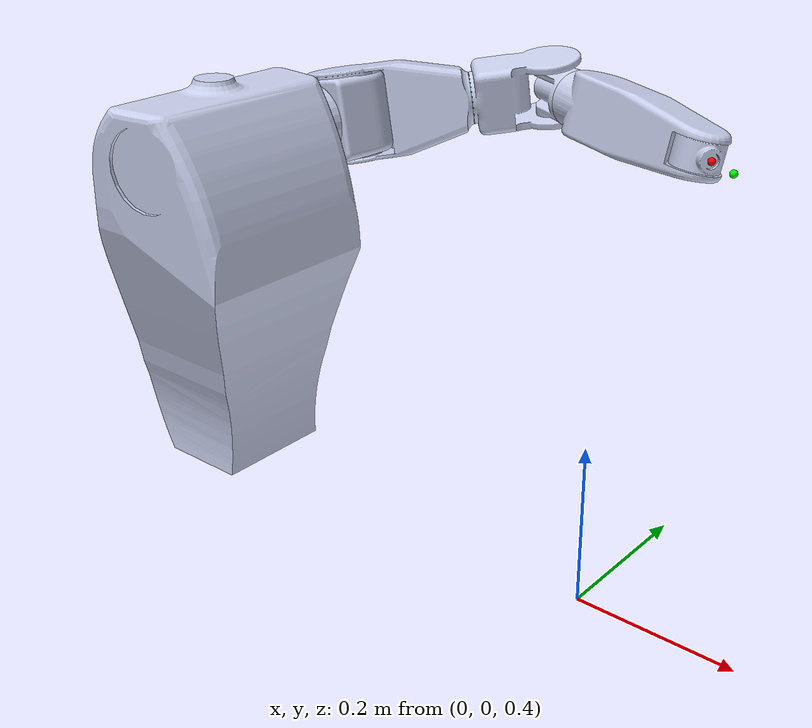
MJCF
<mujoco model="body_sim">
    <compiler angle="radian"
              inertiafromgeom="true"
              texturedir="textures/"
              meshdir=""/>

    <option impratio="20" cone="elliptic" density="1.2" viscosity="0.00002" timestep="0.002"/>

    <default>
        <geom density="5.0"/>
        <default class="arm_joint">
            <joint axis="1 0 0" range="-3.14 3.14" damping="2" limited="true" armature="0.0002" frictionloss="0.01"/>
            <position kp="3" ctrlrange="-1 1"/>
        </default>
        <default class="joint">
            <joint axis="1 0 0" range="-3.14 3.14" damping="1" limited="true" armature="0.0002" frictionloss="0.01"/>
            <position kp="3" ctrlrange="-2 2"/>
        </default>
    </default>

    <size njmax="500" nconmax="100"/>
    <asset>
        <texture builtin="gradient" height="100" rgb1=".4 .5 .6" rgb2="0 0 0" type="skybox" width="100"/>
        <texture name="texplane" type="2d" builtin="checker" rgb1=".2 .3 .4" rgb2=".1 0.15 0.2" width="100" height="100"/>
        <material name="MatPlane" reflectance="0.5" texture="texplane" texrepeat="1 1" texuniform="true"/>

        <texture file="/home/kavin/anaconda3/envs/PythonEnv/lib/python3.8/site-packages/robosuite/models/assets/arenas/../textures/ceramic.png" type="cube" name="tex-ceramic"/>
        <material name="table_ceramic" reflectance="0.0" shininess="0.0" specular="0.2" texrepeat="1 1" texture="tex-ceramic"/>

        <texture file="/home/kavin/anaconda3/envs/PythonEnv/lib/python3.8/site-packages/robosuite/models/assets/arenas/../textures/steel-brushed.png" type="cube" name="tex-steel-brushed"/>
        <material name="table_legs_metal" reflectance="0.8" shininess="0.8" texrepeat="1 1" texture="tex-steel-brushed"/>

        <texture name="textable" builtin="flat" height="512" width="512" rgb1="0.5 0.5 0.5" rgb2="0.5 0.5 0.5"/>
        <material name="table_mat" texture="textable"/>
        <mesh name="mount0_pedestal" file="/home/kavin/anaconda3/envs/PythonEnv/lib/python3.8/site-packages/robosuite/models/assets/mounts/meshes/rethink_mount/pedestal.stl"/>

        <mesh file="/home/kavin/Documents/PycharmProjects/Mujoco/hand_imitation/utils/../models/assets/ycb/collision/011_banana/011_banana_1.stl" name="banana_collision_mesh_1" scale="0.8 0.8 0.8"/>
        <mesh file="/home/kavin/Documents/PycharmProjects/Mujoco/hand_imitation/utils/../models/assets/ycb/collision/011_banana/011_banana_2.stl" name="banana_collision_mesh_2" scale="0.8 0.8 0.8"/>
        <mesh file="/home/kavin/Documents/PycharmProjects/Mujoco/hand_imitation/utils/../models/assets/ycb/visual/011_banana/textured_simple_blender.msh" name="banana_visual_mesh"
              scale="0.8 0.8 0.8"/>
        <texture file="/home/kavin/Documents/PycharmProjects/Mujoco/hand_imitation/utils/../models/assets/ycb/visual/011_banana/texture_map.png" name="banana_texture" type="2d"/>
        <material name="banana_material" texture="banana_texture"/>

        <mesh file="/home/kavin/Documents/GitProjects/RL/robosuite/robosuite/models/assets/objects/meshes/can.msh" name="can_mesh"/>
        <texture file="/home/kavin/Documents/GitProjects/RL/robosuite/robosuite/models/assets/textures/soda.png" name="tex-can" type="2d"/>
        <material name="coke" reflectance="0.7" texrepeat="5 5" texture="tex-can" texuniform="true"/>

        <texture type="cube" name="cube_redwood" file="/home/kavin/Documents/PycharmProjects/Robosuite/robosuite/models/assets/textures/red-wood.png" />
        <material texrepeat="1 1" specular="0.4" shininess="0.1" name="cube_redwood_mat" texture="cube_redwood" />

        <mesh name="body" file="meshes/robot/body.STL"/>
        <mesh name="neck" file="meshes/robot/neck.STL"/>
        <mesh name="head" file="meshes/robot/head.STL"/>
        <mesh name="left_1" file="meshes/robot/left_1.STL"/>
        <mesh name="left_2" file="meshes/robot/left_2.STL"/>
        <mesh name="left_3" file="meshes/robot/left_3.STL"/>
        <mesh name="left_4" file="meshes/robot/left_4.STL"/>
        <mesh name="left_5" file="meshes/robot/left_5.STL"/>
        <mesh name="left_6" file="meshes/robot/left_6.STL"/>

        <mesh name="right_1" file="meshes/robot/right_1.STL"/>
        <mesh name="right_2" file="meshes/robot/right_2.STL"/>
        <mesh name="right_3" file="meshes/robot/right_3.STL"/>
        <mesh name="right_4" file="meshes/robot/right_4.STL"/>
        <mesh name="right_5" file="meshes/robot/right_5.STL"/>
        <mesh name="right_6" file="meshes/robot/right_6.STL"/>

        <mesh name="palm_left" file="meshes/robot/palm_left.STL" />
        <mesh name="finger_11_left" file="meshes/robot/finger_11_left.STL" />
        <mesh name="finger_12_left" file="meshes/robot/finger_12_left.STL" />
        <mesh name="finger_13_left" file="meshes/robot/finger_13_left.STL" />
        <mesh name="finger_14_left" file="meshes/robot/finger_14_left.STL" />
        <mesh name="finger_21_left" file="meshes/robot/finger_21_left.STL" />
        <mesh name="finger_22_left" file="meshes/robot/finger_22_left.STL" />
        <mesh name="finger_23_left" file="meshes/robot/finger_23_left.STL" />
        <mesh name="finger_31_left" file="meshes/robot/finger_31_left.STL" />
        <mesh name="finger_32_left" file="meshes/robot/finger_32_left.STL" />
        <mesh name="finger_33_left" file="meshes/robot/finger_33_left.STL" />
        <mesh name="finger_41_left" file="meshes/robot/finger_41_left.STL" />
        <mesh name="finger_42_left" file="meshes/robot/finger_42_left.STL" />
        <mesh name="finger_43_left" file="meshes/robot/finger_43_left.STL" />
        <mesh name="finger_51_left" file="meshes/robot/finger_51_left.STL" />
        <mesh name="finger_52_left" file="meshes/robot/finger_52_left.STL" />
        <mesh name="finger_53_left" file="meshes/robot/finger_53_left.STL" />

        <mesh name="palm_right" file="meshes/robot/palm_right.STL" />
        <mesh name="finger_11_right" file="meshes/robot/finger_11_right.STL" />
        <mesh name="finger_12_right" file="meshes/robot/finger_12_right.STL" />
        <mesh name="finger_13_right" file="meshes/robot/finger_13_right.STL" />
        <mesh name="finger_14_right" file="meshes/robot/finger_14_right.STL" />
        <mesh name="finger_21_right" file="meshes/robot/finger_21_right.STL" />
        <mesh name="finger_22_right" file="meshes/robot/finger_22_right.STL" />
        <mesh name="finger_23_right" file="meshes/robot/finger_23_right.STL" />
        <mesh name="finger_31_right" file="meshes/robot/finger_31_right.STL" />
        <mesh name="finger_32_right" file="meshes/robot/finger_32_right.STL" />
        <mesh name="finger_33_right" file="meshes/robot/finger_33_right.STL" />
        <mesh name="finger_41_right" file="meshes/robot/finger_41_right.STL" />
        <mesh name="finger_42_right" file="meshes/robot/finger_42_right.STL" />
        <mesh name="finger_43_right" file="meshes/robot/finger_43_right.STL" />
        <mesh name="finger_51_right" file="meshes/robot/finger_51_right.STL" />
        <mesh name="finger_52_right" file="meshes/robot/finger_52_right.STL" />
        <mesh name="finger_53_right" file="meshes/robot/finger_53_right.STL" />
    </asset>

    <worldbody>

        <body name="body" pos="-0.56 0 0.412">
            <inertial pos="0 0 0" quat="0.5 0.5 -0.5 0.5" mass="4" diaginertia="0.0072 0.00443333 0.00443333"/>
            <geom type="mesh" contype="0" conaffinity="0" group="1" rgba="0.792157 0.819608 0.933333 1" mesh="body" name="body_visual"/>
            <geom type="mesh" rgba="0.792157 0.819608 0.933333 1" mesh="body" name="body_collision"/>
            <body name="left_1" pos="0.0084368 0.13751 0.43" quat="0.422014 0.509768 -0.577484 -0.478073">
                <inertial pos="-0.0389123 -8.15098e-11 4.37584e-11" quat="0.707107 0 0 0.707107" mass="0.450915" diaginertia="0.00114268 0.000950117 0.000939472"/>
                <joint class="arm_joint" name="left_j1" axis="1 0 0"/>
                <geom type="mesh" contype="0" conaffinity="0" group="1" rgba="0.792157 0.819608 0.933333 1" mesh="left_1" name="left_1_visual"/>
                <geom type="mesh" rgba="0.792157 0.819608 0.933333 1" mesh="left_1" />
                <body name="left_2" pos="-0.075 0 0" quat="0.934134 0 -0.356921 0">
                    <inertial pos="-0.0621308 1.25597e-07 0.00042437" quat="3.21075e-06 0.706526 3.20548e-06 0.707688" mass="1.56019" diaginertia="0.00710312 0.00597558 0.00259922"/>
                    <joint class="arm_joint" name="left_j2" axis="0 1 0"/>
                    <geom type="mesh" contype="0" conaffinity="0" group="1" rgba="0.792157 0.819608 0.933333 1" mesh="left_2" name="left_2_visual"/>
                    <geom type="mesh" rgba="0.792157 0.819608 0.933333 1" mesh="left_2" name="left_2_collision"/>
                    <body name="left_3" pos="-0.16 0 0" quat="0.792164 0.610309 0 0">
                        <inertial pos="-0.059665 2.14069e-07 -0.000729859" quat="0.502955 0.497027 0.497027 0.502955" mass="0.52034" diaginertia="0.00128574 0.00107323 0.000678269"/>
                        <joint class="arm_joint" name="left_j3" axis="1 0 0"/>
                        <geom type="mesh" contype="0" conaffinity="0" group="1" rgba="0.792157 0.819608 0.933333 1" mesh="left_3" name="left_3_visual"/>
                        <geom type="mesh" rgba="0.792157 0.819608 0.933333 1" mesh="left_3" name="left_3_collision"/>
                        <body name="left_4" pos="-0.121 0 0.037" quat="0.854816 0 0 0.518931">
                            <inertial pos="-0.0236502 -1.38379e-09 -0.037" quat="0.5 0.5 0.5 0.5" mass="0.187003" diaginertia="0.000176801 0.00013087 0.000111406"/>
                            <joint class="arm_joint" name="left_j4" axis="0 0 -1"/>
                            <geom type="mesh" contype="0" conaffinity="0" group="1" rgba="0.792157 0.819608 0.933333 1" mesh="left_4" name="left_4_visual"/>
                            <geom type="mesh" rgba="0.792157 0.819608 0.933333 1" mesh="left_4" name="left_4_collision"/>
                            <body name="left_5" pos="-0.058 0 -0.037" quat="0.184654 -0.982804 0 0">
                                <inertial pos="-0.118694 -2.89295e-08 1.30138e-07" quat="0.499999 0.500001 0.500001 0.499999" mass="1.41911" diaginertia="0.00746362 0.00730999 0.00143555"/>
                                <joint class="arm_joint" name="left_j5" axis="1 0 0"/>
                                <geom type="mesh" contype="0" conaffinity="0" group="1" rgba="0.792157 0.819608 0.933333 1" mesh="left_5" name="left_5_visual"/>
                                <geom type="mesh" rgba="0.792157 0.819608 0.933333 1" mesh="left_5" name="left_5_collision"/>
                                <body name="left_6" pos="-0.250811 0 0.025" quat="0.108969 0 0 0.994045">
                                    <inertial pos="0.00125752 -0.0001315 -0.0250062" quat="0.036822 0.70613 -0.0368186 0.706165" mass="0.130726" diaginertia="6.86601e-05 5.37786e-05 4.85598e-05"/>
                                    <joint class="arm_joint" name="left_j6" axis="0 0 -1"/>
                                    <geom type="mesh" contype="0" conaffinity="0" group="1" rgba="0.792157 0.819608 0.933333 1" mesh="left_6" name="left_6_visual"/>
                                    <geom type="mesh" rgba="0.792157 0.819608 0.933333 1" mesh="left_6" name="left_6_collision"/>
                                    <body name="left_hand" pos="0.0397831 -0.00416024 -0.025" quat="0.707107 0 0.707107 0">
                                        <site name="attachment_site" pos="0 0 0" quat="1 0 0 0" rgba="1 0 0 1"/>
                                        <site name="eef_site" pos="0 0 0.05" quat="0 0.7071068 -0.7071068 0" rgba="0 1 0 1"/>
                                    </body>
                                </body>
                            </body>
                        </body>
                    </body>
                </body>
            </body>

        </body>
    </worldbody>

    <contact>
        <exclude body1="body" body2="left_1"/>
    </contact>

    <actuator>

    </actuator>
</mujoco>
